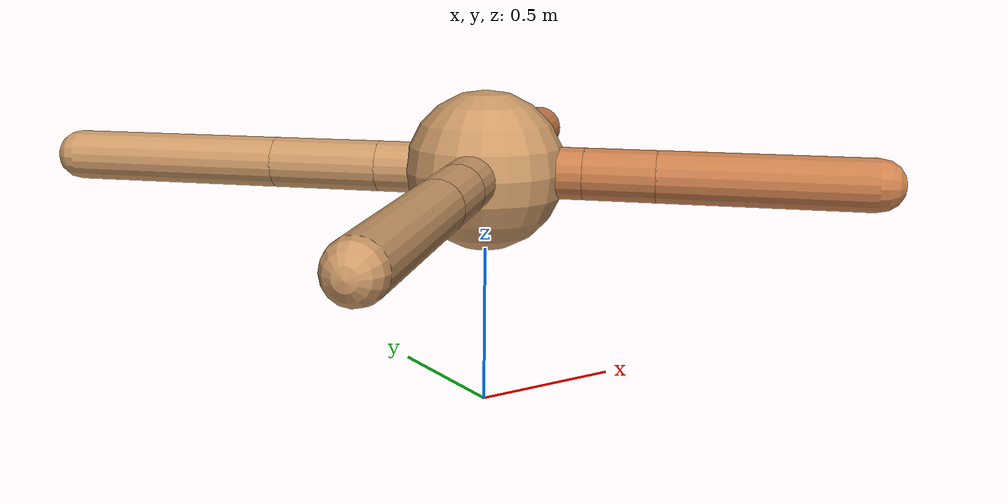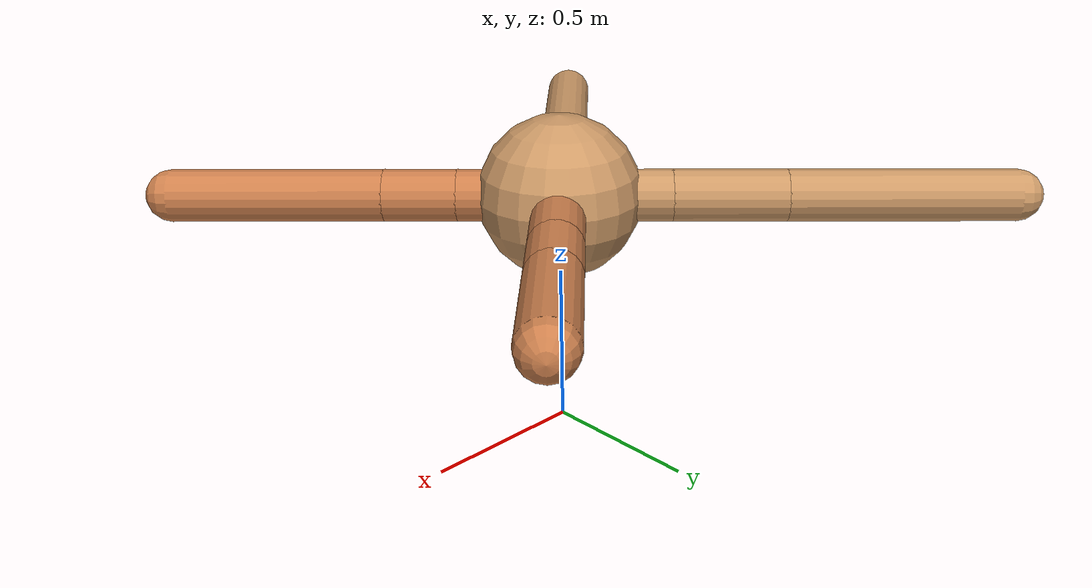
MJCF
<mujoco model="ant">
  <compiler angle="degree" coordinate="local" inertiafromgeom="true" />
  <option integrator="RK4" timestep="0.01" />
  <custom>
    <numeric data="0.0 0.0 0.55 1.0 0.0 0.0 0.0 0.0 1.0 0.0 -1.0 0.0 -1.0 0.0 1.0" name="init_qpos" />
  </custom>
  <default>
    <joint armature="1" damping="1" limited="true" />
    <geom conaffinity="0" condim="3" density="5.0" friction="1.5 0.1 0.1" margin="0.01" rgba="0.8 0.6 0.4 1" />
  </default>
  <worldbody>
    <body name="torso" pos="0 0 0.75">
      <geom name="torso_geom" pos="0 0 0" size="0.25" type="sphere" />

      <body name="front_left_leg" pos="0 0 0">
        <geom fromto="0.0 0.0 0.0 0.29829545842477295 0.29829545842477295 0.0" name="aux_1_geom" size="0.08" type="capsule" rgba=".8 .5 .3 1" />
        <body name="aux_1" pos="0.29829545842477295 0.29829545842477295 0.0">
          <joint axis="0 0 1" name="hip_1" pos="0.0 0.0 0.0" range="-40 40" type="hinge" />
          <geom fromto="0.0 0.0 0.0 0.14222296033445123 0.14222296033445123 0.0" name="left_leg_geom" size="0.08" type="capsule" rgba=".8 .5 .3 1" />
          <body pos="0.14222296033445123 0.14222296033445123 0.0" name="front_left_foot">
            <joint axis="-1 1 0" name="ankle_1" pos="0.0 0.0 0.0" range="30 100" type="hinge" />
            <geom fromto="0.0 0.0 0.0 0.2818623305986564 0.2818623305986564 0.0" name="left_ankle_geom" size="0.08" type="capsule" rgba=".8 .5 .3 1" />
          </body>
        </body>
      </body>
      <body name="front_right_leg" pos="0 0 0">
        <geom fromto="0.0 0.0 0.0 -0.24151832098328635 0.24151832098328635 0.0" name="aux_2_geom" size="0.08" type="capsule" />
        <body name="aux_2" pos="-0.24151832098328635 0.24151832098328635 0.0">
          <joint axis="0 0 1" name="hip_2" pos="0.0 0.0 0.0" range="-40 40" type="hinge" />
          <geom fromto="0.0 0.0 0.0 -0.24435583470412325 0.24435583470412325 0.0" name="right_leg_geom" size="0.08" type="capsule" />
          <body pos="-0.24435583470412325 0.24435583470412325 0.0" name="front_right_foot">
            <joint axis="1 1 0" name="ankle_2" pos="0.0 0.0 0.0" range="-100 -30" type="hinge" />
            <geom fromto="0.0 0.0 0.0 -0.49088692332957307 0.49088692332957307 0.0" name="right_ankle_geom" size="0.08" type="capsule" />
          </body>
        </body>
      </body>
      <body name="left_back_leg" pos="0 0 0">
        <geom fromto="0.0 0.0 0.0 -0.2683874652896491 -0.2683874652896491 0.0" name="aux_3_geom" size="0.08" type="capsule" />
        <body name="aux_3" pos="-0.2683874652896491 -0.2683874652896491 0.0">
          <joint axis="0 0 1" name="hip_3" pos="0.0 0.0 0.0" range="-40 40" type="hinge" />
          <geom fromto="0.0 0.0 0.0 -0.17417386494898052 -0.17417386494898052 0.0" name="back_leg_geom" size="0.08" type="capsule" />
          <body pos="-0.17417386494898052 -0.17417386494898052 0.0" name="left_back_foot">
            <joint axis="-1 1 0" name="ankle_3" pos="0.0 0.0 0.0" range="-100 -30" type="hinge" />
            <geom fromto="0.0 0.0 0.0 -0.49374156406460357 -0.49374156406460357 0.0" name="third_ankle_geom" size="0.08" type="capsule" />
          </body>
        </body>
      </body>
      <body name="right_back_leg" pos="0 0 0">
        <geom fromto="0.0 0.0 0.0 0.21878365950190382 -0.21878365950190382 0.0" name="aux_4_geom" size="0.08" type="capsule" rgba=".8 .5 .3 1" />
        <body name="aux_4" pos="0.21878365950190382 -0.21878365950190382 0.0">
          <joint axis="0 0 1" name="hip_4" pos="0.0 0.0 0.0" range="-40 40" type="hinge" />
          <geom fromto="0.0 0.0 0.0 0.15595362646141142 -0.15595362646141142 0.0" name="rightback_leg_geom" size="0.08" type="capsule" rgba=".8 .5 .3 1" />
          <body pos="0.15595362646141142 -0.15595362646141142 0.0" name="right_back_foot">
            <joint axis="1 1 0" name="ankle_4" pos="0.0 0.0 0.0" range="30 100" type="hinge" />
            <geom fromto="0.0 0.0 0.0 0.4516315505349631 -0.4516315505349631 0.0" name="fourth_ankle_geom" size="0.08" type="capsule" rgba=".8 .5 .3 1" />
          </body>
        </body>
      </body>
    </body>
  </worldbody>
  <actuator>
    <motor ctrllimited="true" ctrlrange="-1.0 1.0" joint="hip_4" gear="150" />
    <motor ctrllimited="true" ctrlrange="-1.0 1.0" joint="ankle_4" gear="150" />
    <motor ctrllimited="true" ctrlrange="-1.0 1.0" joint="hip_1" gear="150" />
    <motor ctrllimited="true" ctrlrange="-1.0 1.0" joint="ankle_1" gear="150" />
    <motor ctrllimited="true" ctrlrange="-1.0 1.0" joint="hip_2" gear="150" />
    <motor ctrllimited="true" ctrlrange="-1.0 1.0" joint="ankle_2" gear="150" />
    <motor ctrllimited="true" ctrlrange="-1.0 1.0" joint="hip_3" gear="150" />
    <motor ctrllimited="true" ctrlrange="-1.0 1.0" joint="ankle_3" gear="150" />
  </actuator>
</mujoco>
